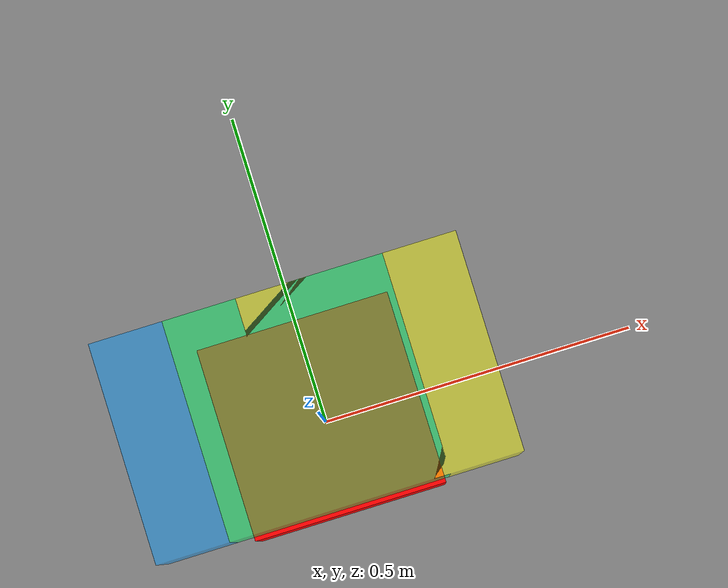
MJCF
<mujoco model="contact_excludes">
  <worldbody>
    <!-- ground plane: collides with everything -->
    <geom name="ground" type="plane" size="5 5 0.01" rgba="0.5 0.5 0.5 1"/>

    <!-- always-collider box sitting on the ground -->
    <body name="collider" pos="0 0 0.15">
      <freejoint/>
      <geom type="box" size="0.15 0.15 0.15" rgba="1 0 0 1"/>
    </body>

    <!-- three boxes that will NOT collide with each other, stacked in the air so they overlap -->
    <body name="no_collide_A" pos="-0.1 0 1.0">
      <freejoint/>
      <geom type="box" size="0.15 0.15 0.15" rgba="0 0.6 1 0.5"/>
    </body>

    <body name="no_collide_B" pos="0 0 1.0">
      <freejoint/>
      <geom type="box" size="0.15 0.15 0.15" rgba="0 1 0.4 0.5"/>
    </body>

    <body name="no_collide_C" pos="0.1 0 1.0">
      <freejoint/>
      <geom type="box" size="0.15 0.15 0.15" rgba="1 1 0 0.5"/>
    </body>
  </worldbody>

  <contact>
    <!-- test an invalid name for body1, but one that still mjcf parses -->
    <exclude body1="world" body2="world"/>
    <exclude body1="no_collide_A" body2="no_collide_B"/>
    <exclude body1="no_collide_A" body2="no_collide_C"/>
    <exclude body1="no_collide_B" body2="no_collide_C"/>
  </contact>
</mujoco>
